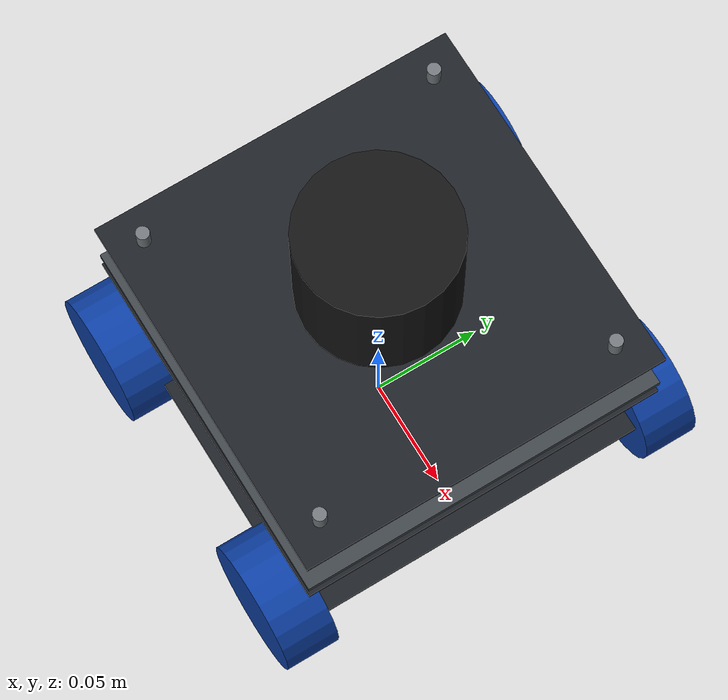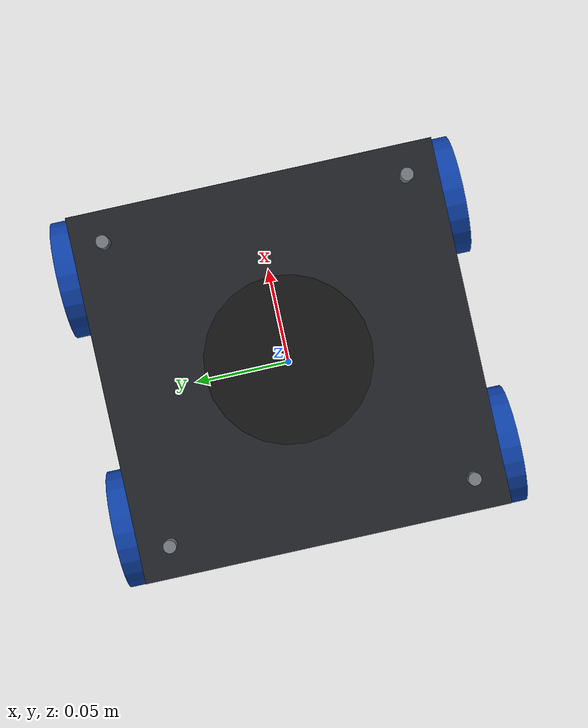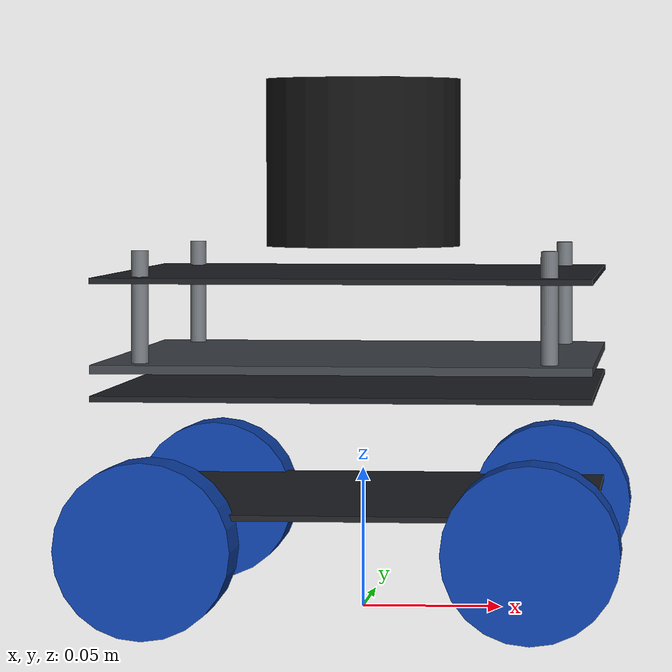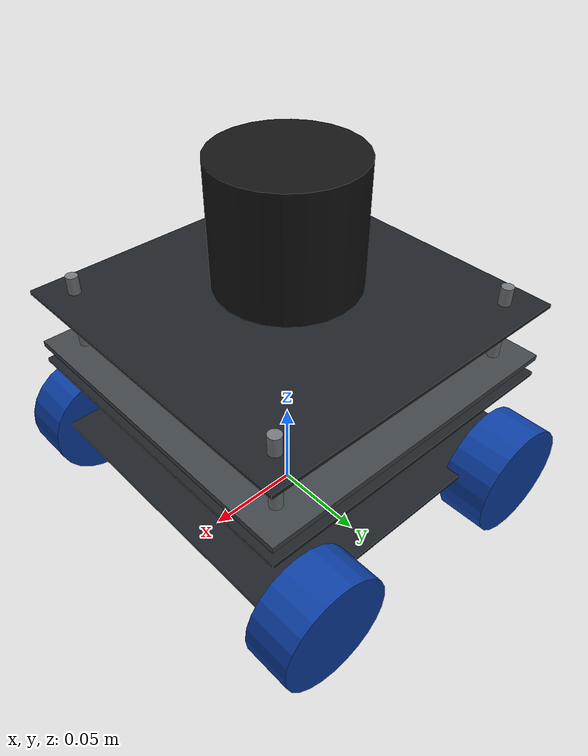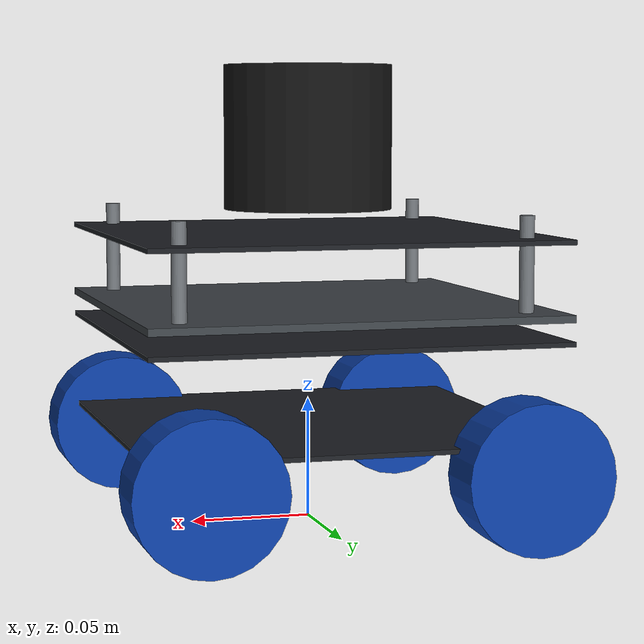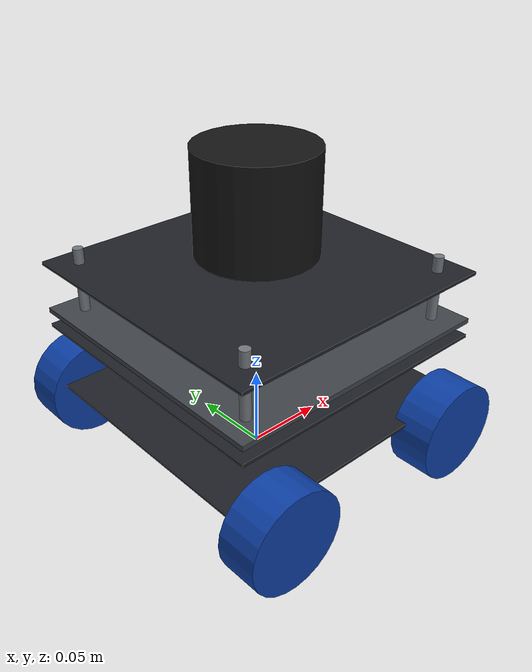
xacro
<?xml version="1.0"?>
<robot name="gatibot_v2" xmlns:xacro="http://www.ros.org/wiki/xacro">

  <!-- Initial chassis dimensions in metres -->
  <xacro:property name="plate_length" value="0.17"/>
  <xacro:property name="plate_width" value="0.17"/>
  <xacro:property name="bottom_thickness" value="0.003"/>
  <xacro:property name="plate_thickness" value="0.002"/>
  <xacro:property name="wheel_radius" value="0.03"/>
  <xacro:property name="wheel_width" value="0.025"/>
  <xacro:property name="wheel_x" value="0.065"/>
  <xacro:property name="wheel_y" value="0.09"/>

  <!-- Main chassis frame -->
  <link name="base_link">
    <visual>
      <origin xyz="0 0 0.09" rpy="0 0 0"/>
      <geometry>
        <box size="${plate_length} ${plate_width} ${bottom_thickness}"/>
      </geometry>
      <material name="chassis_grey">
        <color rgba="0.25 0.27 0.29 1"/>
      </material>
    </visual>
    <collision>
      <origin xyz="0 0 0.09"/>
      <geometry>
        <box size="${plate_length} ${plate_width} ${bottom_thickness}"/>
      </geometry>
    </collision>
    <inertial>
      <origin xyz="0 0 0.09"/>
      <mass value="1.5"/>
      <inertia ixx="0.01" ixy="0" ixz="0"
               iyy="0.01" iyz="0" izz="0.01"/>
    </inertial>
  </link>

  <!-- Four chassis levels -->
  <xacro:macro name="chassis_plate" params="name z">
    <link name="${name}">
      <visual>
        <geometry>
          <box size="${plate_length} ${plate_width} ${plate_thickness}"/>
        </geometry>
        <material name="plate_black">
          <color rgba="0.12 0.13 0.15 1"/>
        </material>
      </visual>
      <collision>
        <geometry>
          <box size="${plate_length} ${plate_width} ${plate_thickness}"/>
        </geometry>
      </collision>
      <inertial>
        <mass value="0.15"/>
        <inertia ixx="0.0001" ixy="0" ixz="0"
                 iyy="0.0001" iyz="0" izz="0.0001"/>
      </inertial>
    </link>
    <joint name="${name}_joint" type="fixed">
      <parent link="base_link"/>
      <child link="${name}"/>
      <origin xyz="0 0 ${z - 0.09}" rpy="0 0 0"/>
    </joint>
  </xacro:macro>

  <xacro:chassis_plate name="middle_plate_1" z="0.13"/>
  <xacro:chassis_plate name="middle_plate_2" z="0.17"/>
  <xacro:chassis_plate name="top_plate" z="0.21"/>

  <!-- Four vertical spacers -->
  <xacro:macro name="spacer" params="name x y">
    <link name="${name}">
      <visual>
        <geometry>
          <cylinder radius="0.003" length="0.04"/>
        </geometry>
        <material name="spacer_grey">
          <color rgba="0.45 0.47 0.49 1"/>
        </material>
      </visual>
    </link>
    <joint name="${name}_joint" type="fixed">
      <parent link="base_link"/>
      <child link="${name}"/>
      <origin xyz="${x} ${y} 0.11"/>
    </joint>
  </xacro:macro>

  <xacro:spacer name="spacer_fl" x="0.07" y="0.07"/>
  <xacro:spacer name="spacer_fr" x="0.07" y="-0.07"/>
  <xacro:spacer name="spacer_rl" x="-0.07" y="0.07"/>
  <xacro:spacer name="spacer_rr" x="-0.07" y="-0.07"/>

  <!-- Four mecanum wheels -->
  <xacro:macro name="mecanum_wheel" params="name x y">
    <link name="${name}">
      <visual>
        <origin rpy="1.5707963 0 0"/>
        <geometry>
          <cylinder radius="${wheel_radius}" length="${wheel_width}"/>
        </geometry>
        <material name="wheel_blue">
          <color rgba="0.05 0.25 0.65 1"/>
        </material>
      </visual>
      <collision>
        <origin rpy="1.5707963 0 0"/>
        <geometry>
          <cylinder radius="${wheel_radius}" length="${wheel_width}"/>
        </geometry>
      </collision>
      <inertial>
        <mass value="0.15"/>
        <inertia ixx="0.0001" ixy="0" ixz="0"
                 iyy="0.0001" iyz="0" izz="0.0001"/>
      </inertial>
    </link>
    <joint name="${name}_joint" type="continuous">
      <parent link="base_link"/>
      <child link="${name}"/>
      <origin xyz="${x} ${y} ${wheel_radius}" rpy="0 0 0"/>
      <axis xyz="0 1 0"/>
    </joint>
  </xacro:macro>

  <xacro:mecanum_wheel name="front_left_wheel"
                       x="${wheel_x}" y="${wheel_y}"/>
  <xacro:mecanum_wheel name="front_right_wheel"
                       x="${wheel_x}" y="${-wheel_y}"/>
  <xacro:mecanum_wheel name="rear_left_wheel"
                       x="${-wheel_x}" y="${wheel_y}"/>
  <xacro:mecanum_wheel name="rear_right_wheel"
                       x="${-wheel_x}" y="${-wheel_y}"/>

  <!-- RPLIDAR A1 placeholder -->
  <link name="rplidar_link">
    <visual>
      <geometry>
        <cylinder radius="0.035" length="0.06"/>
      </geometry>
      <material name="lidar_black">
        <color rgba="0.08 0.08 0.08 1"/>
      </material>
    </visual>
  </link>

  <joint name="rplidar_joint" type="fixed">
    <parent link="top_plate"/>
    <child link="rplidar_link"/>
    <origin xyz="0 0 0.04"/>
  </joint>

</robot>
